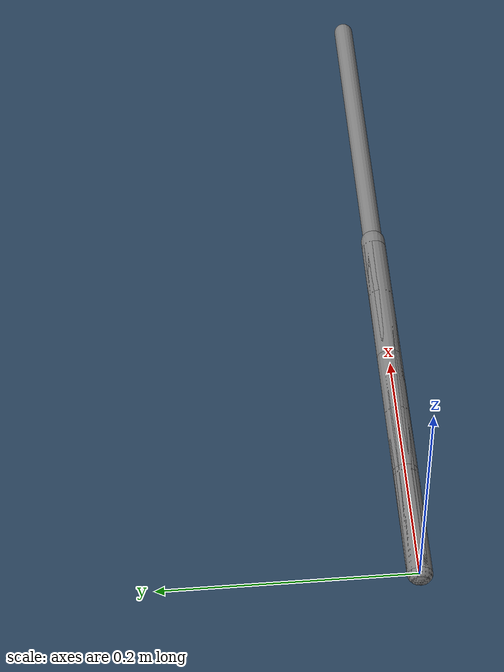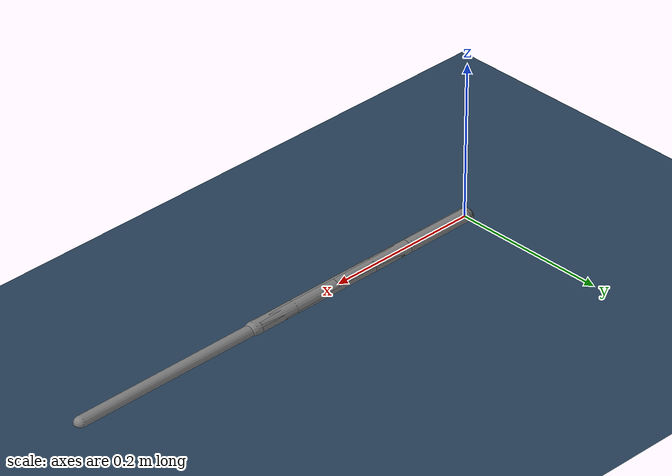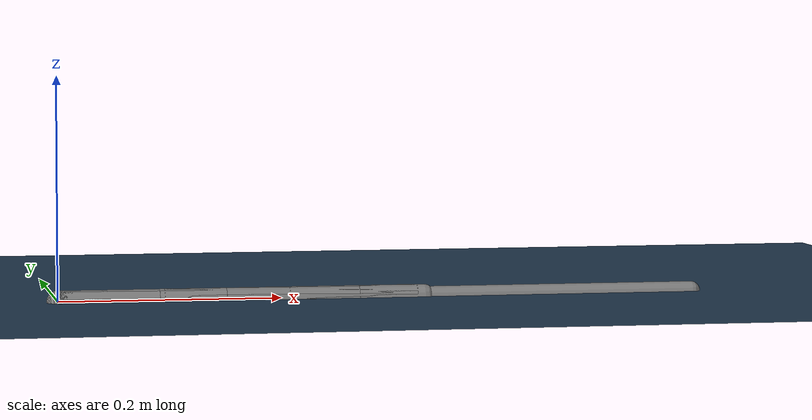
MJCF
<mujoco model="closed_chain_full">

    <compiler angle="degree" coordinate="local"/>
    <option timestep="0.001" gravity="0 0 -9.81" iterations="50"/>

    <visual>
        <map force="0.1" zfar="30"/>
        <rgba haze="0.15 0.25 0.35 1"/>
        <global offwidth="2560" offheight="1440" elevation="-20" azimuth="120"/>
    </visual>

    <asset>
        <texture type="skybox" builtin="gradient" rgb1=".3 .5 .7" rgb2="0 0 0" width="32" height="512"/>
        <texture name="grid" type="2d" builtin="checker" width="512" height="512" rgb1=".1 .2 .3" rgb2=".2 .3 .4"/>
        <material name="grid" texture="grid" texrepeat="1 1" texuniform="true" reflectance=".2"/>
    </asset>

    <size njmax="1000" nconmax="200"/>

    <worldbody>
        <geom name="floor" size="0 0 .05" type="plane" material="grid" condim="3"/>
        <light name="spotlight" mode="targetbody" target="A" diffuse=".8 .8 .8" specular="0.3 0.3 0.3" pos="0 -6 4" cutoff="30"/>
        <light name="top" pos="0 0 2" mode="trackcom"/>

        <!-- A 点固定 -->
        <body name="A" pos="0 0 0">
            <camera name="main" pos="-0.6 0 0.3" xyaxes="0 -1 0 1 0 1" mode="trackcom"/>
            <geom type="sphere" size="0.01"/>

            <!-- B branch -->
            <body name="B" pos="0 0 0">
                <joint name="q_B" type="hinge" axis="0 0 1" damping="0.2" frictionloss="0.01"/>
                <geom type="capsule" fromto="0 0 0 0.0945 0 0" size="0.01"/>

                <!-- B-C link -->
                <body name="BC" pos="0.0945 0 0">
                    <joint name="q_BC" type="hinge" axis="0 0 1" damping="0.2" frictionloss="0.01"/>
                    <geom type="capsule" fromto="0 0 0 0.1125 0 0" size="0.01"/>

                    <!-- C 点 / C-D link -->
                    <body name="C" pos="0.1125 0 0">
                        <joint name="q_C" type="hinge" axis="0 0 1" damping="0.2" frictionloss="0.01"/>
                        <geom type="capsule" fromto="0 0 0 0.116 0 0" size="0.01"/>
                        <site name="C_site" pos="0.116 0 0"/>
                    </body>
                </body>
            </body>

            <!-- D branch -->
            <body name="D" pos="0 0 0">
                <joint name="q_D" type="hinge" axis="0 0 1" damping="0.2" frictionloss="0.01"/>
                <geom type="capsule" fromto="0 0 0 0.090 0 0" size="0.01"/>
                <site name="D_site" pos="0.090 0 0"/>

                <!-- A-G link (same axis as A-D) -->
                <geom type="capsule" fromto="0 0 0 0.210 0 0" size="0.006"/>
                <site name="G_site" pos="0.210 0 0"/>

                <!-- Parallelogram loop: D-E-F-G -->
                <body name="DE" pos="0.090 0 0">
                    <joint name="q_DE" type="hinge" axis="0 0 1" damping="0.2" frictionloss="0.01"/>
                    <geom type="capsule" fromto="0 0 0 0.060 0 0" size="0.01"/>
                    <site name="E_site" pos="0.060 0 0"/>

                    <body name="E" pos="0.060 0 0">
                        <joint name="q_E" type="hinge" axis="0 0 1" damping="0.2" frictionloss="0.01"/>
                        <geom type="capsule" fromto="0 0 0 0.120 0 0" size="0.01"/>
                        <site name="F_site" pos="0.120 0 0"/>

                        <body name="F" pos="0.120 0 0">
                            <joint name="q_F" type="hinge" axis="0 0 1" damping="0.2" frictionloss="0.01"/>
                            <geom type="capsule" fromto="0 0 0 0.060 0 0" size="0.01"/>

                            <body name="G_loop" pos="0.060 0 0">
                                <site name="G_loop_site" pos="0 0 0"/>
                                <geom type="capsule" fromto="0 0 0 0.250 0 0" size="0.008"/>
                                <site name="H_site" pos="0.250 0 0"/>
                            </body>
                        </body>
                    </body>
                </body>
            </body>

        </body>

    </worldbody>

    <!-- 角度耦合 tendon -->
    <tendon>
        <fixed name="t_de_abs">
            <joint joint="q_D" coef="1"/>
            <joint joint="q_DE" coef="1"/>
        </fixed>
        <fixed name="t_dc_abs">
            <joint joint="q_B" coef="1"/>
            <joint joint="q_BC" coef="1"/>
            <joint joint="q_C" coef="1"/>
        </fixed>
    </tendon>

    <!-- 驱动 actuator -->
    <actuator>
        <position name="act_q_B" joint="q_B" kp="0.0" ctrlrange="-180 180"/>
        <position name="act_q_D" joint="q_D" kp="0.0" ctrlrange="-180 180"/>
    </actuator>
    <equality>
        <!-- 主闭链 C-D -->
        <connect site1="C_site" site2="D_site" solref="0.01 1" solimp="0.9 0.95 0.001"/>
        <!-- 平行四边形闭链 -->
        <connect site1="G_loop_site" site2="G_site" solref="0.01 1" solimp="0.9 0.95 0.001"/>
        <!-- FG方向与DC平行：q_D + q_DE = q_B + q_BC + q_C -->
        <tendon tendon1="t_de_abs" tendon2="t_dc_abs" solref="0.01 1" solimp="0.9 0.95 0.001"/>
    </equality>

    <!-- 初始姿态 keyframe -->
    <keyframe>
        <!-- qpos order: q_B q_BC q_C q_D q_DE q_E q_F (degrees) -->
        <key name="init" qpos="-202 8.17 -4.74 -193 -5.13 5.13 -1.9"/>
    </keyframe>

</mujoco>
